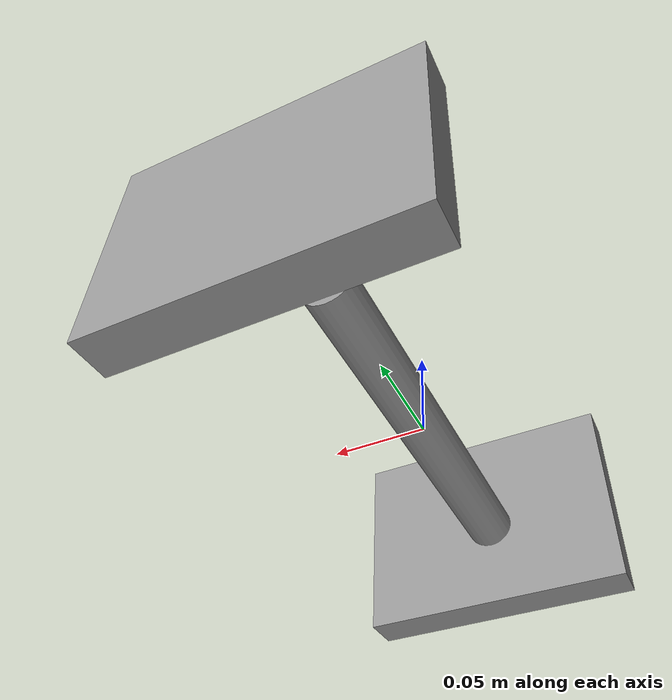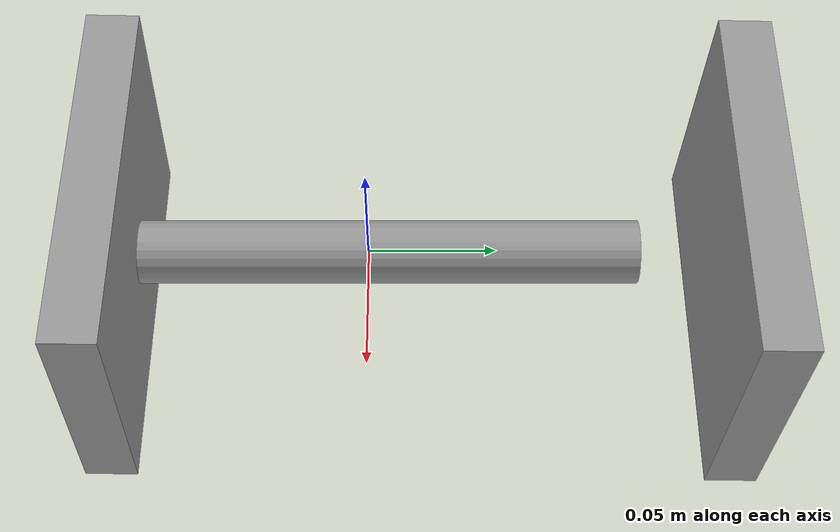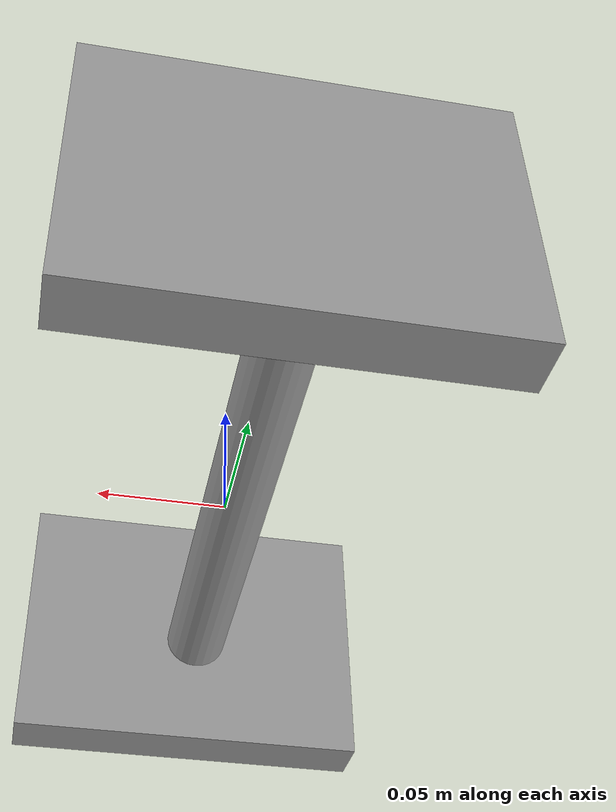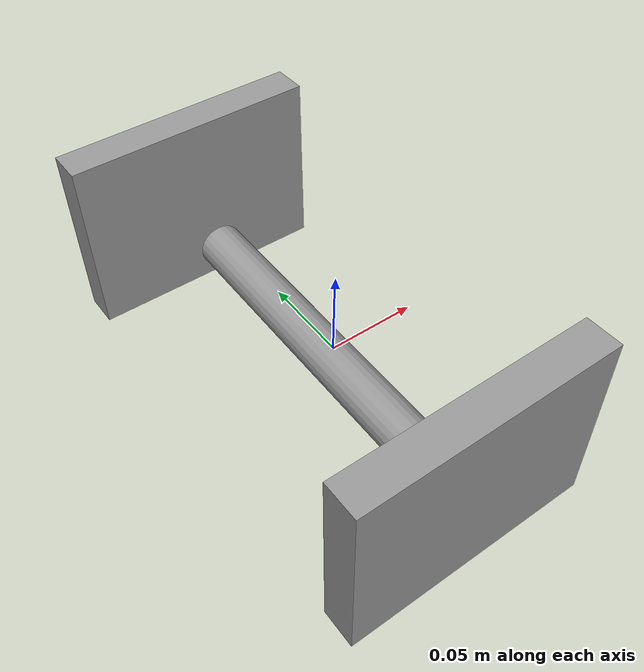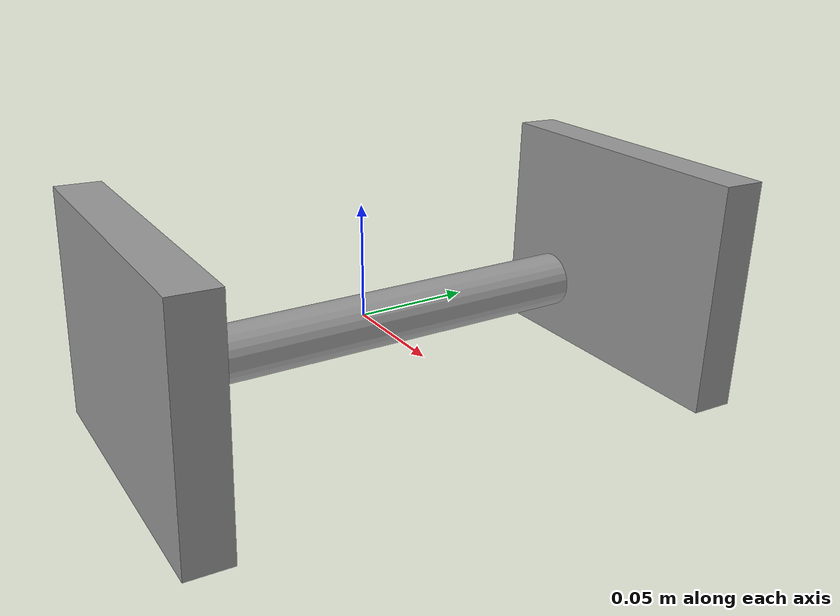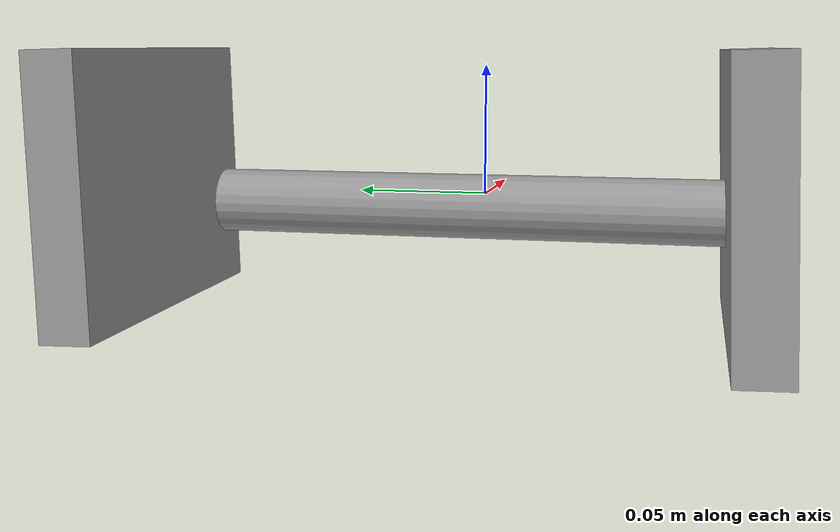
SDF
<?xml version='1.0'?>
<sdf version='1.6'>
  <model name='dumbbell'>
    <link name='link_4'>
      <inertial>
        <mass>0.000324157</mass>
        <inertia>
          <ixx>3.25112e-07</ixx>
          <ixy>0</ixy>
          <ixz>0</ixz>
          <iyy>5.83397e-07</iyy>
          <iyz>0</iyz>
          <izz>8.85378e-07</izz>
        </inertia>
        <pose frame=''>0 0 0 0 -0 0</pose>
      </inertial>
      <pose frame=''>-0.000229 -0.101006 0.002396 -1.6004 0 0</pose>
      <visual name='visual'>
        <pose frame=''>0 0 0 0 -0 0</pose>
        <geometry>
          <box>
            <size>0.145495 0.107737 0.020692</size>
          </box>
        </geometry>
        <material>
          <lighting>1</lighting>
          <script>
            <uri>file://media/materials/scripts/gazebo.material</uri>
            <name>Gazebo/Grey</name>
          </script>
          <emissive>0 0 0 1</emissive>
        </material>
        <transparency>0</transparency>
        <cast_shadows>1</cast_shadows>
      </visual>
      <collision name='collision'>
        <laser_retro>0</laser_retro>
        <max_contacts>10</max_contacts>
        <pose frame=''>0 0 0 0 -0 0</pose>
        <geometry>
          <box>
            <size>0.145495 0.107737 0.020692</size>
          </box>
        </geometry>
        <surface>
          <friction>
            <ode>
              <mu>1</mu>
              <mu2>1</mu2>
              <fdir1>0 0 0</fdir1>
              <slip1>0</slip1>
              <slip2>0</slip2>
            </ode>
            <torsional>
              <coefficient>1</coefficient>
              <patch_radius>0</patch_radius>
              <surface_radius>0</surface_radius>
              <use_patch_radius>1</use_patch_radius>
              <ode>
                <slip>0</slip>
              </ode>
            </torsional>
          </friction>
          <bounce>
            <restitution_coefficient>0</restitution_coefficient>
            <threshold>1e+06</threshold>
          </bounce>
          <contact>
            <collide_without_contact>0</collide_without_contact>
            <collide_without_contact_bitmask>1</collide_without_contact_bitmask>
            <collide_bitmask>1</collide_bitmask>
            <ode>
              <soft_cfm>0</soft_cfm>
              <soft_erp>0.2</soft_erp>
              <kp>1e+13</kp>
              <kd>1</kd>
              <max_vel>0.01</max_vel>
              <min_depth>0</min_depth>
            </ode>
            <bullet>
              <split_impulse>1</split_impulse>
              <split_impulse_penetration_threshold>-0.01</split_impulse_penetration_threshold>
              <soft_cfm>0</soft_cfm>
              <soft_erp>0.2</soft_erp>
              <kp>1e+13</kp>
              <kd>1</kd>
            </bullet>
          </contact>
        </surface>
      </collision>
    </link>
    <link name='link_4_clone'>
      <inertial>
        <mass>0.000324157</mass>
        <inertia>
          <ixx>3.25112e-07</ixx>
          <ixy>0</ixy>
          <ixz>0</ixz>
          <iyy>5.83397e-07</iyy>
          <iyz>0</iyz>
          <izz>8.85378e-07</izz>
        </inertia>
        <pose frame=''>0 0 0 0 -0 0</pose>
      </inertial>
      <pose frame=''>0.002763 0.14488 0.002396 -1.6004 0 0</pose>
      <visual name='visual'>
        <pose frame=''>0 0 0 0 -0 0</pose>
        <geometry>
          <box>
            <size>0.145495 0.107737 0.020692</size>
          </box>
        </geometry>
        <material>
          <lighting>1</lighting>
          <script>
            <uri>file://media/materials/scripts/gazebo.material</uri>
            <name>Gazebo/Grey</name>
          </script>
          <shader type='pixel'/>
          <emissive>0 0 0 1</emissive>
        </material>
        <transparency>0</transparency>
        <cast_shadows>1</cast_shadows>
      </visual>
      <collision name='collision'>
        <laser_retro>0</laser_retro>
        <max_contacts>10</max_contacts>
        <pose frame=''>0 0 0 0 -0 0</pose>
        <geometry>
          <box>
            <size>0.145495 0.107737 0.020692</size>
          </box>
        </geometry>
        <surface>
          <friction>
            <ode>
              <mu>1</mu>
              <mu2>1</mu2>
              <fdir1>0 0 0</fdir1>
              <slip1>0</slip1>
              <slip2>0</slip2>
            </ode>
            <torsional>
              <coefficient>1</coefficient>
              <patch_radius>0</patch_radius>
              <surface_radius>0</surface_radius>
              <use_patch_radius>1</use_patch_radius>
              <ode>
                <slip>0</slip>
              </ode>
            </torsional>
          </friction>
          <bounce>
            <restitution_coefficient>0</restitution_coefficient>
            <threshold>1e+06</threshold>
          </bounce>
          <contact>
            <collide_without_contact>0</collide_without_contact>
            <collide_without_contact_bitmask>1</collide_without_contact_bitmask>
            <collide_bitmask>1</collide_bitmask>
            <ode>
              <soft_cfm>0</soft_cfm>
              <soft_erp>0.2</soft_erp>
              <kp>1e+13</kp>
              <kd>1</kd>
              <max_vel>0.01</max_vel>
              <min_depth>0</min_depth>
            </ode>
            <bullet>
              <split_impulse>1</split_impulse>
              <split_impulse_penetration_threshold>-0.01</split_impulse_penetration_threshold>
              <soft_cfm>0</soft_cfm>
              <soft_erp>0.2</soft_erp>
              <kp>1e+13</kp>
              <kd>1</kd>
            </bullet>
          </contact>
        </surface>
      </collision>
    </link>
    <link name='link_5'>
      <inertial>
        <mass>5.68866e-05</mass>
        <inertia>
          <ixx>4.13361e-08</ixx>
          <ixy>0</ixy>
          <ixz>0</ixz>
          <iyy>4.13361e-08</iyy>
          <iyz>0</iyz>
          <izz>4.48448e-09</izz>
        </inertia>
        <pose frame=''>0 0 0 0 -0 0</pose>
      </inertial>
      <pose frame=''>-0.002538 0.00613 -0.004792 -1.57205 0 0</pose>
      <visual name='visual'>
        <pose frame=''>0 0 0 0 -0 0</pose>
        <geometry>
          <cylinder>
            <radius>0.0125564</radius>
            <length>0.2008113</length>
          </cylinder>
        </geometry>
        <material>
          <lighting>1</lighting>
          <script>
            <uri>file://media/materials/scripts/gazebo.material</uri>
            <name>Gazebo/Grey</name>
          </script>
          <emissive>0 0 0 1</emissive>
        </material>
        <transparency>0</transparency>
        <cast_shadows>1</cast_shadows>
      </visual>
      <collision name='collision'>
        <laser_retro>0</laser_retro>
        <max_contacts>10</max_contacts>
        <pose frame=''>0 0 0 0 -0 0</pose>
        <geometry>
          <cylinder>
            <radius>0.012556</radius>
            <length>0.200811</length>
          </cylinder>
        </geometry>
        <surface>
          <friction>
            <ode>
              <mu>1</mu>
              <mu2>1</mu2>
              <fdir1>0 0 0</fdir1>
              <slip1>0</slip1>
              <slip2>0</slip2>
            </ode>
            <torsional>
              <coefficient>1</coefficient>
              <patch_radius>0</patch_radius>
              <surface_radius>0</surface_radius>
              <use_patch_radius>1</use_patch_radius>
              <ode>
                <slip>0</slip>
              </ode>
            </torsional>
          </friction>
          <bounce>
            <restitution_coefficient>0</restitution_coefficient>
            <threshold>1e+06</threshold>
          </bounce>
          <contact>
            <collide_without_contact>0</collide_without_contact>
            <collide_without_contact_bitmask>1</collide_without_contact_bitmask>
            <collide_bitmask>1</collide_bitmask>
            <ode>
              <soft_cfm>0</soft_cfm>
              <soft_erp>0.2</soft_erp>
              <kp>1e+13</kp>
              <kd>1</kd>
              <max_vel>0.01</max_vel>
              <min_depth>0</min_depth>
            </ode>
            <bullet>
              <split_impulse>1</split_impulse>
              <split_impulse_penetration_threshold>-0.01</split_impulse_penetration_threshold>
              <soft_cfm>0</soft_cfm>
              <soft_erp>0.2</soft_erp>
              <kp>1e+13</kp>
              <kd>1</kd>
            </bullet>
          </contact>
        </surface>
      </collision>
    </link>
    <joint name='link_4_JOINT_2' type='fixed'>
      <parent>link_4</parent>
      <child>link_5</child>
      <pose frame=''>0 0 0 0 -0 0</pose>
      <physics>
        <ode>
          <limit>
            <cfm>0</cfm>
            <erp>0.2</erp>
          </limit>
          <suspension>
            <cfm>0</cfm>
            <erp>0.2</erp>
          </suspension>
        </ode>
      </physics>
    </joint>
    <joint name='link_5_JOINT_3' type='fixed'>
      <parent>link_5</parent>
      <child>link_4_clone</child>
      <pose frame=''>0 0 0 0 -0 0</pose>
      <physics>
        <ode>
          <limit>
            <cfm>0</cfm>
            <erp>0.2</erp>
          </limit>
          <suspension>
            <cfm>0</cfm>
            <erp>0.2</erp>
          </suspension>
        </ode>
      </physics>
    </joint>
    <static>0</static>
    <allow_auto_disable>1</allow_auto_disable>
  </model>
</sdf>
